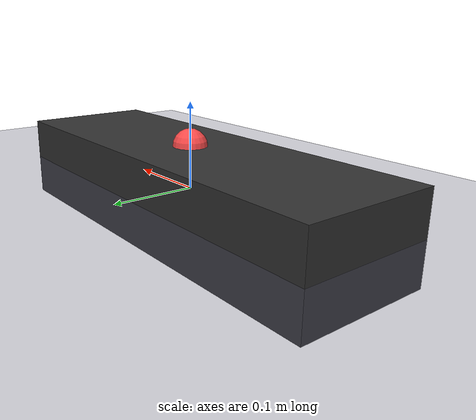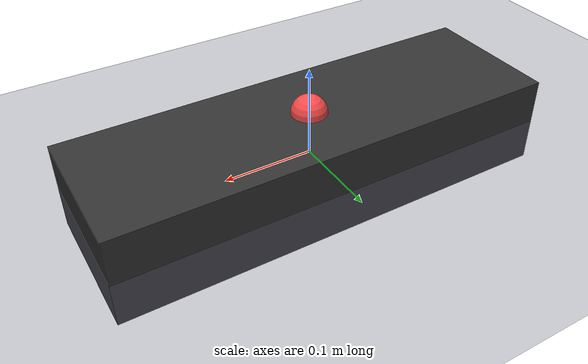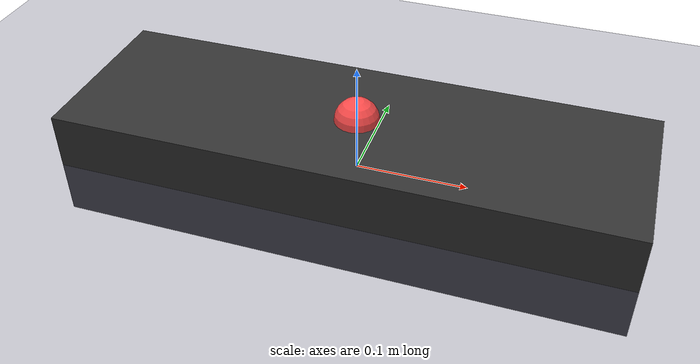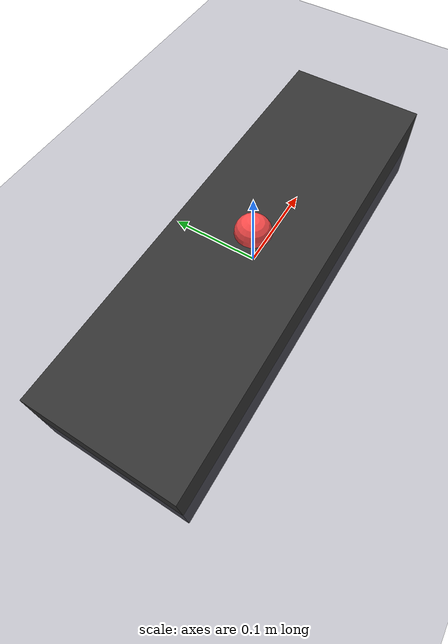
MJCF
<mujoco model="block1d">

  <compiler angle="radian" autolimits="true"/>

  <!-- 0.005 = agent_timestep numeric (task_push.xml:20) = FLAGS_dt default (standalone_block_push.cc:29).
       Standalone default only: the yaml `timestep` overrides this at load (make_system). -->
  <option timestep="0.005" integrator="Euler"/>

  <default>
    <geom solref=".001 1"/>
  </default>

  <worldbody>

    <light pos="0 -0.1 0.5" dir="0 0.2 -1" directional="true"/>

    <geom name="floor" type="plane" size="0 0 0.05" pos="0 0 0"
          friction="0.1 0.003 0.003" rgba="0.3 0.3 0.4 1"/>

    <body name="block" pos="0 0 0">
      <freejoint name="block_free"/>
      <geom name="block" type="box" size="0.25 0.08 0.05" mass="0.5"
            friction="0.1 0.003 0.003" rgba="0.2 0.2 0.2 1"/>
    </body>

    <!-- end effector (pusher): body "ee", end_effector_push.xml:6-14 -->
    <body name="ee" pos="0 0 0">
      <joint name="ee_x" type="slide" axis="1 0 0" limited="false" range="-1.5 1.5" pos="0 0 0.05"/>
      <inertial mass="0.1" pos="0 0 0.075" diaginertia="0.001 0.001 0.001"/>
      <geom name="ee" type="sphere" size="0.02" pos="0 0 0.05"
            priority="1" condim="3" friction="1.0 0.003 0.003" margin="0" rgba="1 0.3 0.3 1"/>
    </body>

  </worldbody>

  <actuator>
    <motor name="ee_x_motor" joint="ee_x" gear="6" ctrlrange="-1 1" ctrllimited="true"/>
  </actuator>

  <keyframe>
    <key name="home" qpos="0.25 0 0.055 1 0 0 0 -0.04"/>
  </keyframe>

</mujoco>
